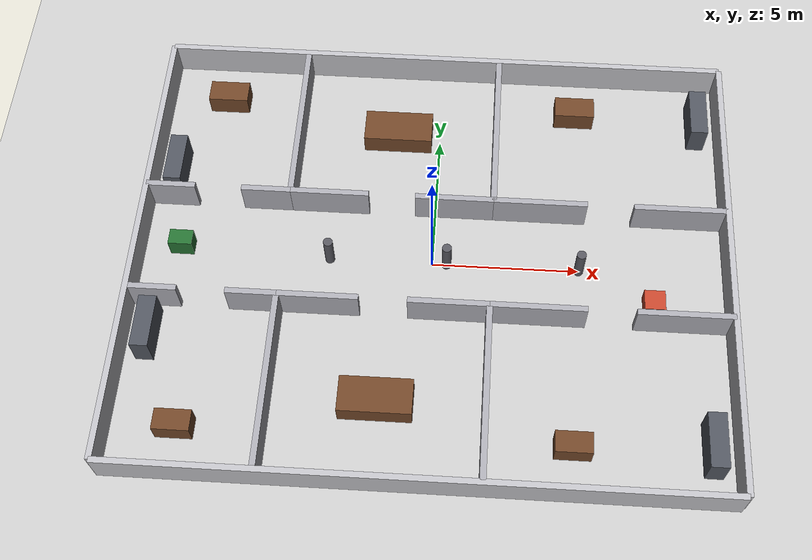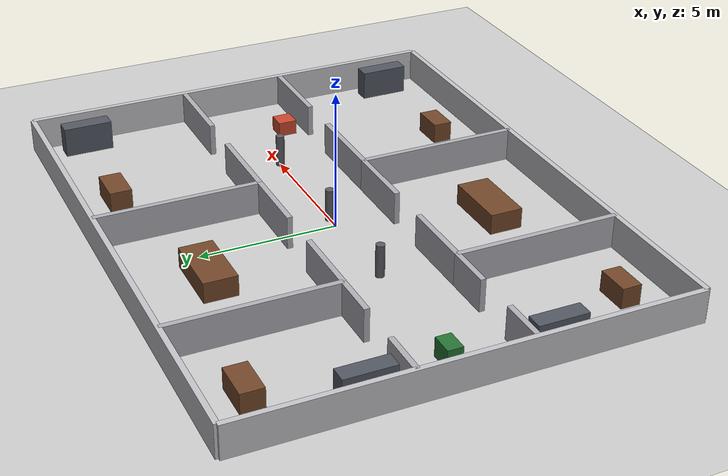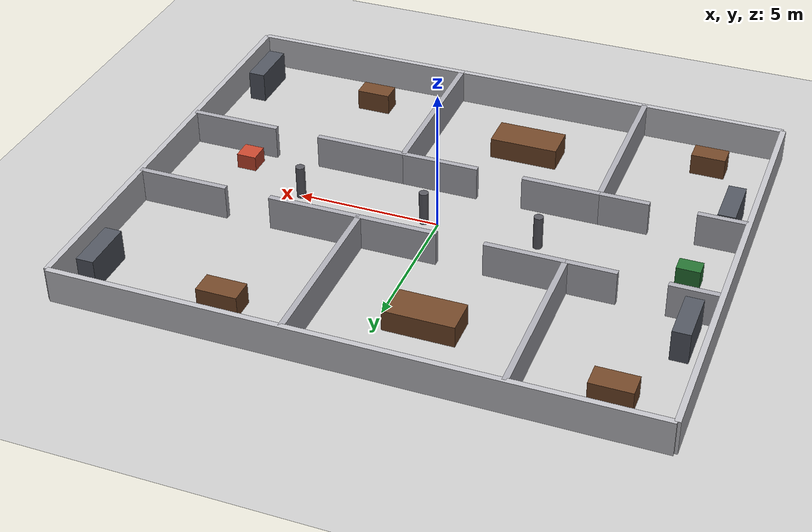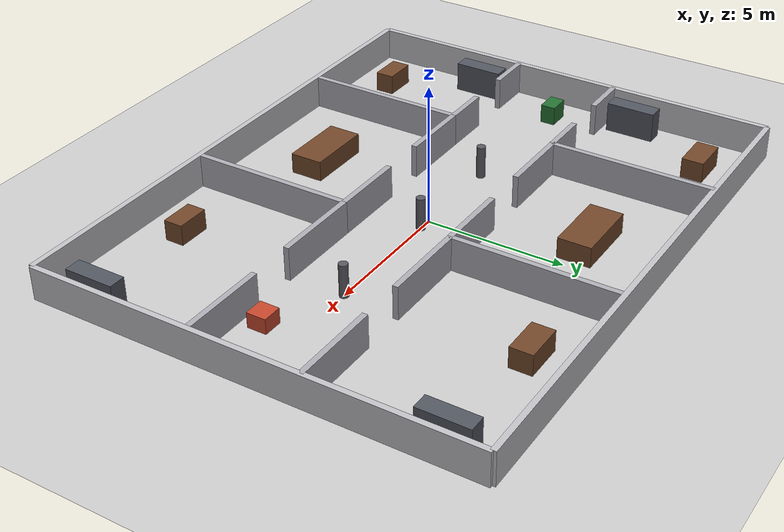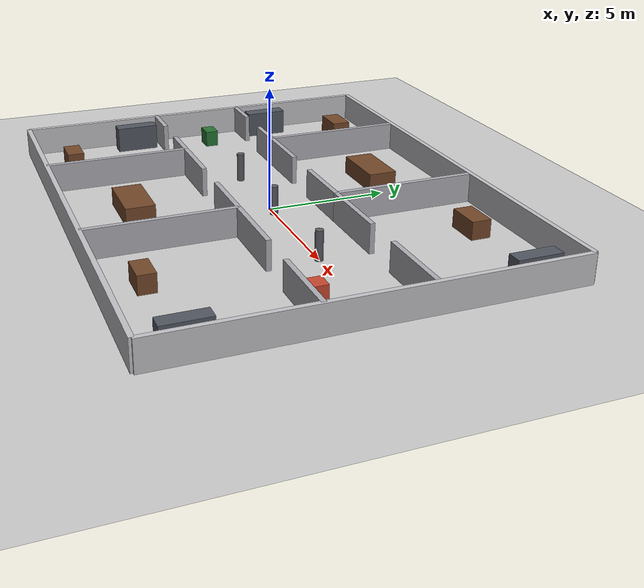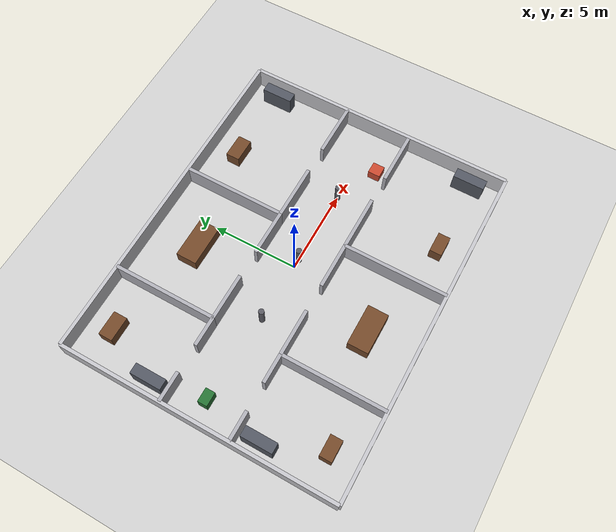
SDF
<?xml version="1.0"?>
<sdf version="1.6">
  <world name="r550_office_indoor">
    <include>
      <uri>model://ground_plane</uri>
    </include>
    <include>
      <uri>model://sun</uri>
    </include>

    <!-- ================= outer walls ================= -->
    <model name="outer_wall_north">
      <static>true</static>
      <link name="link">
        <collision name="collision">
          <geometry><box><size>20 0.2 1.2</size></box></geometry>
        </collision>
        <visual name="visual">
          <geometry><box><size>20 0.2 1.2</size></box></geometry>
          <material>
            <ambient>0.76 0.76 0.78 1</ambient>
            <diffuse>0.76 0.76 0.78 1</diffuse>
          </material>
        </visual>
      </link>
      <pose>0 8 0.6 0 0 0</pose>
    </model>

    <model name="outer_wall_south">
      <static>true</static>
      <link name="link">
        <collision name="collision">
          <geometry><box><size>20 0.2 1.2</size></box></geometry>
        </collision>
        <visual name="visual">
          <geometry><box><size>20 0.2 1.2</size></box></geometry>
          <material>
            <ambient>0.76 0.76 0.78 1</ambient>
            <diffuse>0.76 0.76 0.78 1</diffuse>
          </material>
        </visual>
      </link>
      <pose>0 -8 0.6 0 0 0</pose>
    </model>

    <model name="outer_wall_east">
      <static>true</static>
      <link name="link">
        <collision name="collision">
          <geometry><box><size>0.2 16 1.2</size></box></geometry>
        </collision>
        <visual name="visual">
          <geometry><box><size>0.2 16 1.2</size></box></geometry>
          <material>
            <ambient>0.76 0.76 0.78 1</ambient>
            <diffuse>0.76 0.76 0.78 1</diffuse>
          </material>
        </visual>
      </link>
      <pose>10 0 0.6 0 0 0</pose>
    </model>

    <model name="outer_wall_west">
      <static>true</static>
      <link name="link">
        <collision name="collision">
          <geometry><box><size>0.2 16 1.2</size></box></geometry>
        </collision>
        <visual name="visual">
          <geometry><box><size>0.2 16 1.2</size></box></geometry>
          <material>
            <ambient>0.76 0.76 0.78 1</ambient>
            <diffuse>0.76 0.76 0.78 1</diffuse>
          </material>
        </visual>
      </link>
      <pose>-10 0 0.6 0 0 0</pose>
    </model>

    <!-- ================= room dividers ================= -->
    <model name="divider_north_west">
      <static>true</static>
      <link name="link">
        <collision name="collision">
          <geometry><box><size>0.2 6 1.2</size></box></geometry>
        </collision>
        <visual name="visual">
          <geometry><box><size>0.2 6 1.2</size></box></geometry>
          <material>
            <ambient>0.68 0.68 0.71 1</ambient>
            <diffuse>0.68 0.68 0.71 1</diffuse>
          </material>
        </visual>
      </link>
      <pose>-5 5 0.6 0 0 0</pose>
    </model>

    <model name="divider_north_east">
      <static>true</static>
      <link name="link">
        <collision name="collision">
          <geometry><box><size>0.2 6 1.2</size></box></geometry>
        </collision>
        <visual name="visual">
          <geometry><box><size>0.2 6 1.2</size></box></geometry>
          <material>
            <ambient>0.68 0.68 0.71 1</ambient>
            <diffuse>0.68 0.68 0.71 1</diffuse>
          </material>
        </visual>
      </link>
      <pose>2 5 0.6 0 0 0</pose>
    </model>

    <model name="divider_south_west">
      <static>true</static>
      <link name="link">
        <collision name="collision">
          <geometry><box><size>0.2 6 1.2</size></box></geometry>
        </collision>
        <visual name="visual">
          <geometry><box><size>0.2 6 1.2</size></box></geometry>
          <material>
            <ambient>0.68 0.68 0.71 1</ambient>
            <diffuse>0.68 0.68 0.71 1</diffuse>
          </material>
        </visual>
      </link>
      <pose>-5 -5 0.6 0 0 0</pose>
    </model>

    <model name="divider_south_east">
      <static>true</static>
      <link name="link">
        <collision name="collision">
          <geometry><box><size>0.2 6 1.2</size></box></geometry>
        </collision>
        <visual name="visual">
          <geometry><box><size>0.2 6 1.2</size></box></geometry>
          <material>
            <ambient>0.68 0.68 0.71 1</ambient>
            <diffuse>0.68 0.68 0.71 1</diffuse>
          </material>
        </visual>
      </link>
      <pose>2 -5 0.6 0 0 0</pose>
    </model>

    <!-- ================= north corridor wall, with three doors ================= -->
    <model name="north_wall_n1_left">
      <static>true</static>
      <link name="link">
        <collision name="collision">
          <geometry><box><size>1.7 0.2 1.2</size></box></geometry>
        </collision>
        <visual name="visual">
          <geometry><box><size>1.7 0.2 1.2</size></box></geometry>
          <material>
            <ambient>0.68 0.68 0.71 1</ambient>
            <diffuse>0.68 0.68 0.71 1</diffuse>
          </material>
        </visual>
      </link>
      <pose>-9.15 2 0.6 0 0 0</pose>
    </model>

    <model name="north_wall_n1_right">
      <static>true</static>
      <link name="link">
        <collision name="collision">
          <geometry><box><size>1.7 0.2 1.2</size></box></geometry>
        </collision>
        <visual name="visual">
          <geometry><box><size>1.7 0.2 1.2</size></box></geometry>
          <material>
            <ambient>0.68 0.68 0.71 1</ambient>
            <diffuse>0.68 0.68 0.71 1</diffuse>
          </material>
        </visual>
      </link>
      <pose>-5.85 2 0.6 0 0 0</pose>
    </model>

    <model name="north_wall_n2_left">
      <static>true</static>
      <link name="link">
        <collision name="collision">
          <geometry><box><size>2.7 0.2 1.2</size></box></geometry>
        </collision>
        <visual name="visual">
          <geometry><box><size>2.7 0.2 1.2</size></box></geometry>
          <material>
            <ambient>0.68 0.68 0.71 1</ambient>
            <diffuse>0.68 0.68 0.71 1</diffuse>
          </material>
        </visual>
      </link>
      <pose>-3.65 2 0.6 0 0 0</pose>
    </model>

    <model name="north_wall_n2_right">
      <static>true</static>
      <link name="link">
        <collision name="collision">
          <geometry><box><size>2.7 0.2 1.2</size></box></geometry>
        </collision>
        <visual name="visual">
          <geometry><box><size>2.7 0.2 1.2</size></box></geometry>
          <material>
            <ambient>0.68 0.68 0.71 1</ambient>
            <diffuse>0.68 0.68 0.71 1</diffuse>
          </material>
        </visual>
      </link>
      <pose>0.65 2 0.6 0 0 0</pose>
    </model>

    <model name="north_wall_n3_left">
      <static>true</static>
      <link name="link">
        <collision name="collision">
          <geometry><box><size>3.2 0.2 1.2</size></box></geometry>
        </collision>
        <visual name="visual">
          <geometry><box><size>3.2 0.2 1.2</size></box></geometry>
          <material>
            <ambient>0.68 0.68 0.71 1</ambient>
            <diffuse>0.68 0.68 0.71 1</diffuse>
          </material>
        </visual>
      </link>
      <pose>3.6 2 0.6 0 0 0</pose>
    </model>

    <model name="north_wall_n3_right">
      <static>true</static>
      <link name="link">
        <collision name="collision">
          <geometry><box><size>3.2 0.2 1.2</size></box></geometry>
        </collision>
        <visual name="visual">
          <geometry><box><size>3.2 0.2 1.2</size></box></geometry>
          <material>
            <ambient>0.68 0.68 0.71 1</ambient>
            <diffuse>0.68 0.68 0.71 1</diffuse>
          </material>
        </visual>
      </link>
      <pose>8.4 2 0.6 0 0 0</pose>
    </model>

    <!-- ================= south corridor wall, with three doors ================= -->
    <model name="south_wall_s1_left">
      <static>true</static>
      <link name="link">
        <collision name="collision">
          <geometry><box><size>1.7 0.2 1.2</size></box></geometry>
        </collision>
        <visual name="visual">
          <geometry><box><size>1.7 0.2 1.2</size></box></geometry>
          <material>
            <ambient>0.68 0.68 0.71 1</ambient>
            <diffuse>0.68 0.68 0.71 1</diffuse>
          </material>
        </visual>
      </link>
      <pose>-9.15 -2 0.6 0 0 0</pose>
    </model>

    <model name="south_wall_s1_right">
      <static>true</static>
      <link name="link">
        <collision name="collision">
          <geometry><box><size>1.7 0.2 1.2</size></box></geometry>
        </collision>
        <visual name="visual">
          <geometry><box><size>1.7 0.2 1.2</size></box></geometry>
          <material>
            <ambient>0.68 0.68 0.71 1</ambient>
            <diffuse>0.68 0.68 0.71 1</diffuse>
          </material>
        </visual>
      </link>
      <pose>-5.85 -2 0.6 0 0 0</pose>
    </model>

    <model name="south_wall_s2_left">
      <static>true</static>
      <link name="link">
        <collision name="collision">
          <geometry><box><size>2.7 0.2 1.2</size></box></geometry>
        </collision>
        <visual name="visual">
          <geometry><box><size>2.7 0.2 1.2</size></box></geometry>
          <material>
            <ambient>0.68 0.68 0.71 1</ambient>
            <diffuse>0.68 0.68 0.71 1</diffuse>
          </material>
        </visual>
      </link>
      <pose>-3.65 -2 0.6 0 0 0</pose>
    </model>

    <model name="south_wall_s2_right">
      <static>true</static>
      <link name="link">
        <collision name="collision">
          <geometry><box><size>2.7 0.2 1.2</size></box></geometry>
        </collision>
        <visual name="visual">
          <geometry><box><size>2.7 0.2 1.2</size></box></geometry>
          <material>
            <ambient>0.68 0.68 0.71 1</ambient>
            <diffuse>0.68 0.68 0.71 1</diffuse>
          </material>
        </visual>
      </link>
      <pose>0.65 -2 0.6 0 0 0</pose>
    </model>

    <model name="south_wall_s3_left">
      <static>true</static>
      <link name="link">
        <collision name="collision">
          <geometry><box><size>3.2 0.2 1.2</size></box></geometry>
        </collision>
        <visual name="visual">
          <geometry><box><size>3.2 0.2 1.2</size></box></geometry>
          <material>
            <ambient>0.68 0.68 0.71 1</ambient>
            <diffuse>0.68 0.68 0.71 1</diffuse>
          </material>
        </visual>
      </link>
      <pose>3.6 -2 0.6 0 0 0</pose>
    </model>

    <model name="south_wall_s3_right">
      <static>true</static>
      <link name="link">
        <collision name="collision">
          <geometry><box><size>3.2 0.2 1.2</size></box></geometry>
        </collision>
        <visual name="visual">
          <geometry><box><size>3.2 0.2 1.2</size></box></geometry>
          <material>
            <ambient>0.68 0.68 0.71 1</ambient>
            <diffuse>0.68 0.68 0.71 1</diffuse>
          </material>
        </visual>
      </link>
      <pose>8.4 -2 0.6 0 0 0</pose>
    </model>

    <!-- ================= corridor columns ================= -->
    <model name="column_1">
      <static>true</static>
      <link name="link">
        <collision name="collision">
          <geometry><cylinder><radius>0.16</radius><length>1.2</length></cylinder></geometry>
        </collision>
        <visual name="visual">
          <geometry><cylinder><radius>0.16</radius><length>1.2</length></cylinder></geometry>
          <material>
            <ambient>0.35 0.35 0.38 1</ambient>
            <diffuse>0.35 0.35 0.38 1</diffuse>
          </material>
        </visual>
      </link>
      <pose>-3.5 0 0.6 0 0 0</pose>
    </model>

    <model name="column_2">
      <static>true</static>
      <link name="link">
        <collision name="collision">
          <geometry><cylinder><radius>0.16</radius><length>1.2</length></cylinder></geometry>
        </collision>
        <visual name="visual">
          <geometry><cylinder><radius>0.16</radius><length>1.2</length></cylinder></geometry>
          <material>
            <ambient>0.35 0.35 0.38 1</ambient>
            <diffuse>0.35 0.35 0.38 1</diffuse>
          </material>
        </visual>
      </link>
      <pose>0.5 0 0.6 0 0 0</pose>
    </model>

    <model name="column_3">
      <static>true</static>
      <link name="link">
        <collision name="collision">
          <geometry><cylinder><radius>0.16</radius><length>1.2</length></cylinder></geometry>
        </collision>
        <visual name="visual">
          <geometry><cylinder><radius>0.16</radius><length>1.2</length></cylinder></geometry>
          <material>
            <ambient>0.35 0.35 0.38 1</ambient>
            <diffuse>0.35 0.35 0.38 1</diffuse>
          </material>
        </visual>
      </link>
      <pose>5 0 0.6 0 0 0</pose>
    </model>

    <!-- ================= north room furniture ================= -->
    <model name="desk_n1">
      <static>true</static>
      <link name="link">
        <collision name="collision">
          <geometry><box><size>1.4 0.8 0.75</size></box></geometry>
        </collision>
        <visual name="visual">
          <geometry><box><size>1.4 0.8 0.75</size></box></geometry>
          <material>
            <ambient>0.45 0.28 0.16 1</ambient>
            <diffuse>0.45 0.28 0.16 1</diffuse>
          </material>
        </visual>
      </link>
      <pose>-7.8 6.4 0.375 0 0 0</pose>
    </model>

    <model name="desk_n2">
      <static>true</static>
      <link name="link">
        <collision name="collision">
          <geometry><box><size>2.4 1.2 0.75</size></box></geometry>
        </collision>
        <visual name="visual">
          <geometry><box><size>2.4 1.2 0.75</size></box></geometry>
          <material>
            <ambient>0.45 0.28 0.16 1</ambient>
            <diffuse>0.45 0.28 0.16 1</diffuse>
          </material>
        </visual>
      </link>
      <pose>-1.5 5.2 0.375 0 0 0</pose>
    </model>

    <model name="desk_n3">
      <static>true</static>
      <link name="link">
        <collision name="collision">
          <geometry><box><size>1.4 0.8 0.75</size></box></geometry>
        </collision>
        <visual name="visual">
          <geometry><box><size>1.4 0.8 0.75</size></box></geometry>
          <material>
            <ambient>0.45 0.28 0.16 1</ambient>
            <diffuse>0.45 0.28 0.16 1</diffuse>
          </material>
        </visual>
      </link>
      <pose>4.8 6.4 0.375 0 0 0</pose>
    </model>

    <model name="shelf_north_west">
      <static>true</static>
      <link name="link">
        <collision name="collision">
          <geometry><box><size>0.6 1.8 1.1</size></box></geometry>
        </collision>
        <visual name="visual">
          <geometry><box><size>0.6 1.8 1.1</size></box></geometry>
          <material>
            <ambient>0.32 0.34 0.38 1</ambient>
            <diffuse>0.32 0.34 0.38 1</diffuse>
          </material>
        </visual>
      </link>
      <pose>-9.2 3.2 0.55 0 0 0</pose>
    </model>

    <model name="shelf_north_east">
      <static>true</static>
      <link name="link">
        <collision name="collision">
          <geometry><box><size>0.6 1.8 1.1</size></box></geometry>
        </collision>
        <visual name="visual">
          <geometry><box><size>0.6 1.8 1.1</size></box></geometry>
          <material>
            <ambient>0.32 0.34 0.38 1</ambient>
            <diffuse>0.32 0.34 0.38 1</diffuse>
          </material>
        </visual>
      </link>
      <pose>9.2 6.2 0.55 0 0 0</pose>
    </model>

    <!-- ================= south room furniture ================= -->
    <model name="desk_s1">
      <static>true</static>
      <link name="link">
        <collision name="collision">
          <geometry><box><size>1.2 0.7 0.75</size></box></geometry>
        </collision>
        <visual name="visual">
          <geometry><box><size>1.2 0.7 0.75</size></box></geometry>
          <material>
            <ambient>0.45 0.28 0.16 1</ambient>
            <diffuse>0.45 0.28 0.16 1</diffuse>
          </material>
        </visual>
      </link>
      <pose>-7.8 -6.4 0.375 0 0 0</pose>
    </model>

    <model name="desk_s2">
      <static>true</static>
      <link name="link">
        <collision name="collision">
          <geometry><box><size>2.4 1.2 0.75</size></box></geometry>
        </collision>
        <visual name="visual">
          <geometry><box><size>2.4 1.2 0.75</size></box></geometry>
          <material>
            <ambient>0.45 0.28 0.16 1</ambient>
            <diffuse>0.45 0.28 0.16 1</diffuse>
          </material>
        </visual>
      </link>
      <pose>-1.5 -5.2 0.375 0 0 0</pose>
    </model>

    <model name="desk_s3">
      <static>true</static>
      <link name="link">
        <collision name="collision">
          <geometry><box><size>1.2 0.7 0.75</size></box></geometry>
        </collision>
        <visual name="visual">
          <geometry><box><size>1.2 0.7 0.75</size></box></geometry>
          <material>
            <ambient>0.45 0.28 0.16 1</ambient>
            <diffuse>0.45 0.28 0.16 1</diffuse>
          </material>
        </visual>
      </link>
      <pose>4.8 -6.4 0.375 0 0 0</pose>
    </model>

    <model name="shelf_south_west">
      <static>true</static>
      <link name="link">
        <collision name="collision">
          <geometry><box><size>0.6 1.8 1.1</size></box></geometry>
        </collision>
        <visual name="visual">
          <geometry><box><size>0.6 1.8 1.1</size></box></geometry>
          <material>
            <ambient>0.32 0.34 0.38 1</ambient>
            <diffuse>0.32 0.34 0.38 1</diffuse>
          </material>
        </visual>
      </link>
      <pose>-9.2 -3.2 0.55 0 0 0</pose>
    </model>

    <model name="shelf_south_east">
      <static>true</static>
      <link name="link">
        <collision name="collision">
          <geometry><box><size>0.6 1.8 1.1</size></box></geometry>
        </collision>
        <visual name="visual">
          <geometry><box><size>0.6 1.8 1.1</size></box></geometry>
          <material>
            <ambient>0.32 0.34 0.38 1</ambient>
            <diffuse>0.32 0.34 0.38 1</diffuse>
          </material>
        </visual>
      </link>
      <pose>9.2 -6.2 0.55 0 0 0</pose>
    </model>

    <!-- ================= extra corridor obstacles ================= -->
    <model name="obstacle_cart">
      <static>true</static>
      <link name="link">
        <collision name="collision">
          <geometry><box><size>0.8 0.55 0.7</size></box></geometry>
        </collision>
        <visual name="visual">
          <geometry><box><size>0.8 0.55 0.7</size></box></geometry>
          <material>
            <ambient>0.15 0.45 0.2 1</ambient>
            <diffuse>0.15 0.45 0.2 1</diffuse>
          </material>
        </visual>
      </link>
      <pose>-8.6 0.2 0.35 0 0 0</pose>
    </model>

    <model name="obstacle_box">
      <static>true</static>
      <link name="link">
        <collision name="collision">
          <geometry><box><size>0.7 0.7 0.55</size></box></geometry>
        </collision>
        <visual name="visual">
          <geometry><box><size>0.7 0.7 0.55</size></box></geometry>
          <material>
            <ambient>0.78 0.28 0.18 1</ambient>
            <diffuse>0.78 0.28 0.18 1</diffuse>
          </material>
        </visual>
      </link>
      <pose>7.5 -1.2 0.275 0 0 0</pose>
    </model>
  </world>
</sdf>
